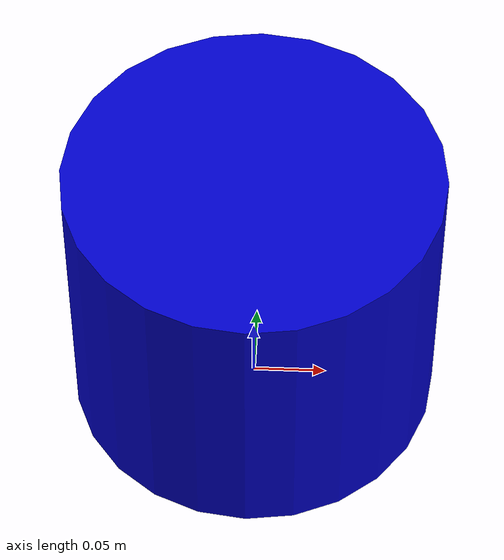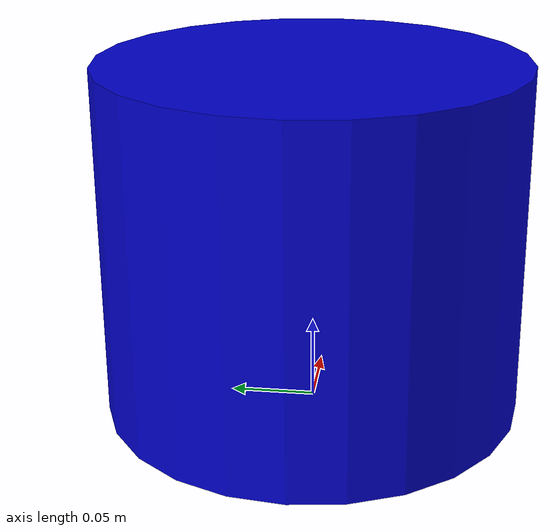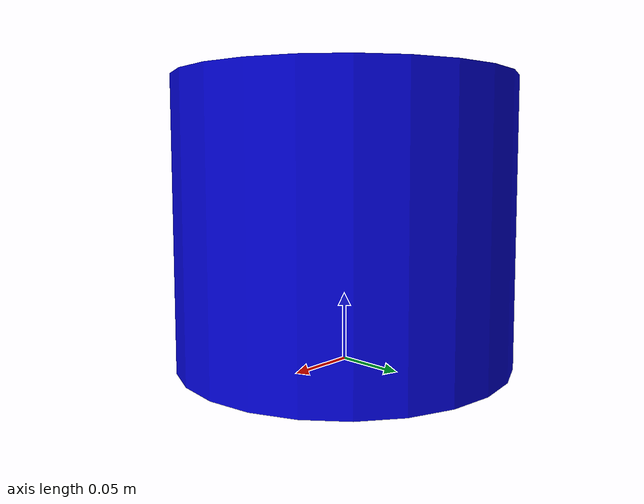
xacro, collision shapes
<?xml version="1.0"?>
<robot name="my_robot" xmlns:xacro="http://www.ros.org/wiki/xacro">

  <xacro:arg name="sim" default="false" />

  <!-- Materials -->
  <material name="blue">
    <color rgba="0.0 0.0 0.8 1.0"/>
  </material>

  <material name="black">
    <color rgba="0.0 0.0 0.0 1.0"/>
  </material>

  <material name="gray">
    <color rgba="0.7 0.7 0.7 1.0"/>
  </material>

  <xacro:property name="base_radius" value="0.105" />
  <xacro:property name="base_length" value="0.25" />
  <xacro:property name="base_mass" value="0.3" />
  <xacro:property name="wheel_radius" value="0.02" />
  <xacro:property name="wheel_length" value="0.01" />
  <xacro:property name="wheel_mass" value="0.01" />
  <xacro:property name="caster_radius" value="0.02" />
  <xacro:property name="caster_mass" value="0.01" />
  <xacro:property name="base_z_offset" value="0.02" />

  <link name="base_link">
    <visual>
      <origin xyz="0 0 ${base_z_offset}" rpy="0 0 0"/>
      <geometry>
        <mesh filename="package://robot_description/meshes/body.stl"/>
      </geometry>
      <material name="blue"/>
    </visual>
    <collision>
      <origin xyz="0.0 0.0 0.105" rpy="0 0 0"/>
      <geometry>
        <cylinder length="0.21" radius="0.125"/>
      </geometry>
    </collision>
    <inertial>
      <mass value="${base_mass}"/>
      <inertia ixx="0.0024" ixy="0.0" ixz="0.0" iyy="0.0017" iyz="0.0" izz="0.0024"/>
    </inertial>
  </link>

  <xacro:macro name="wheel" params="prefix reflect turn_angle">
    <link name="${prefix}_wheel">
      <visual>
        <origin xyz="0.0 0.0 0.0" rpy="0 0 ${turn_angle}"/>
        <geometry>
          <mesh filename="package://robot_description/meshes/wheel.stl"/>
        </geometry>
        <material name="black"/>
      </visual>
      <collision>
        <origin xyz="0.0 0.0 0.0" rpy="${reflect * -1.57} 0 0"/>
        <geometry>
          <cylinder length="${wheel_length}" radius="${wheel_radius}"/>
        </geometry>
      </collision>
      <inertial>
        <mass value="${wheel_mass}"/>
        <inertia ixx="0.000001" ixy="0.0" ixz="0.0" iyy="0.000001" iyz="0.0" izz="0.000002"/>
      </inertial>
    </link>

    <joint name="${prefix}_wheel_joint" type="continuous">
      <parent link="base_link"/>
      <child link="${prefix}_wheel"/>
      <origin xyz="-0.02 ${reflect * 0.06} ${base_z_offset}" rpy="0 0 0"/>
      <axis xyz="0 1 0"/>
      <dynamics damping="0.1" friction="0.0"/>
    </joint>
  </xacro:macro>

  <xacro:wheel prefix="left" reflect="1" turn_angle="0"/>
  <xacro:wheel prefix="right" reflect="-1" turn_angle="3.1415"/>  <!-- Изменено на 0 для симметрии -->

  <link name="front_caster">
    <visual>
      <geometry>
        <mesh filename="package://robot_description/meshes/ball.stl"/>
      </geometry>
      <material name="gray"/>
    </visual>
    <collision>
      <origin xyz="0.0 0.0 0.0" rpy="0 0 0"/>
      <geometry>
        <sphere radius="${caster_radius}"/>
      </geometry>
    </collision>
    <inertial>
      <mass value="${caster_mass}"/>
      <inertia ixx="0.0000016" ixy="0.0" ixz="0.0" iyy="0.0000016" iyz="0.0" izz="0.0000016"/>
    </inertial>
  </link>

  <joint name="front_caster_joint" type="fixed">
    <parent link="base_link"/>
    <child link="front_caster"/>
    <origin xyz="0.03 0.0 ${base_z_offset}" rpy="0 0 0"/>
  </joint>

  <xacro:if value="$(arg sim)">
    <xacro:include filename="$(find robot_description)/urdf/robot.gazebo.xacro" />
  </xacro:if>

</robot>
